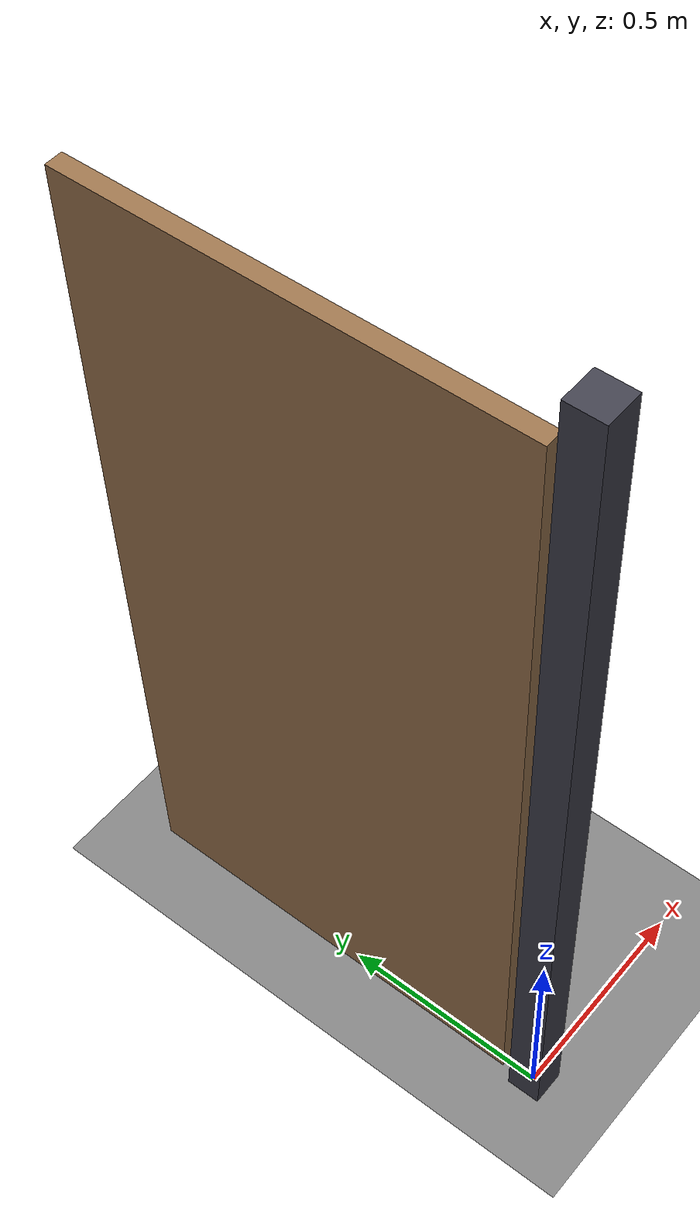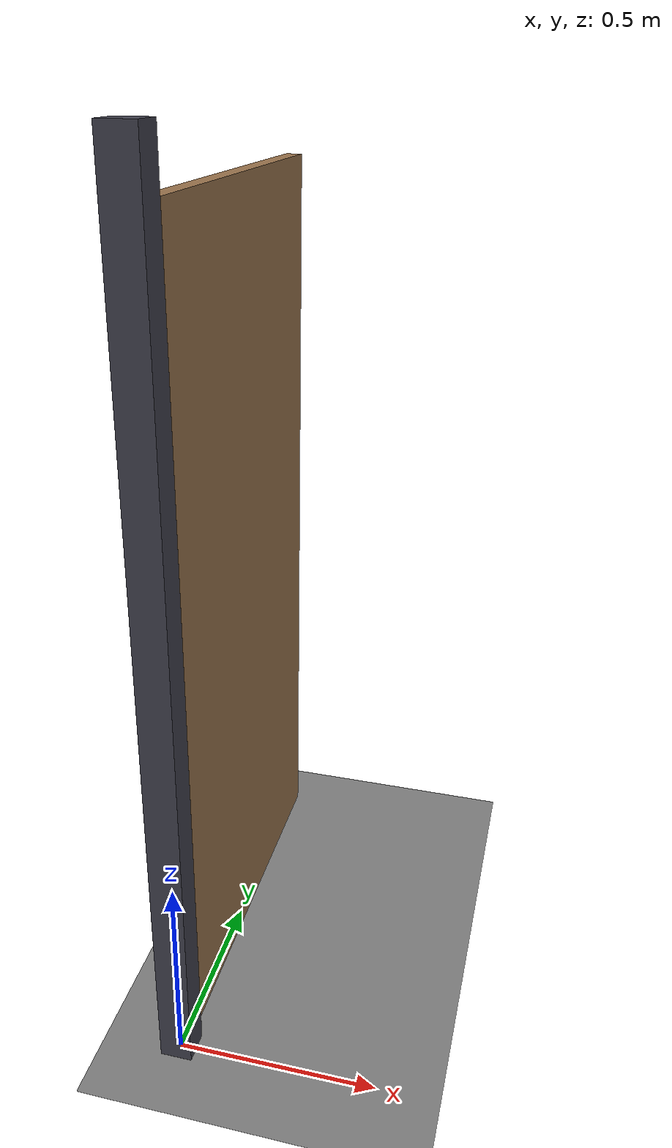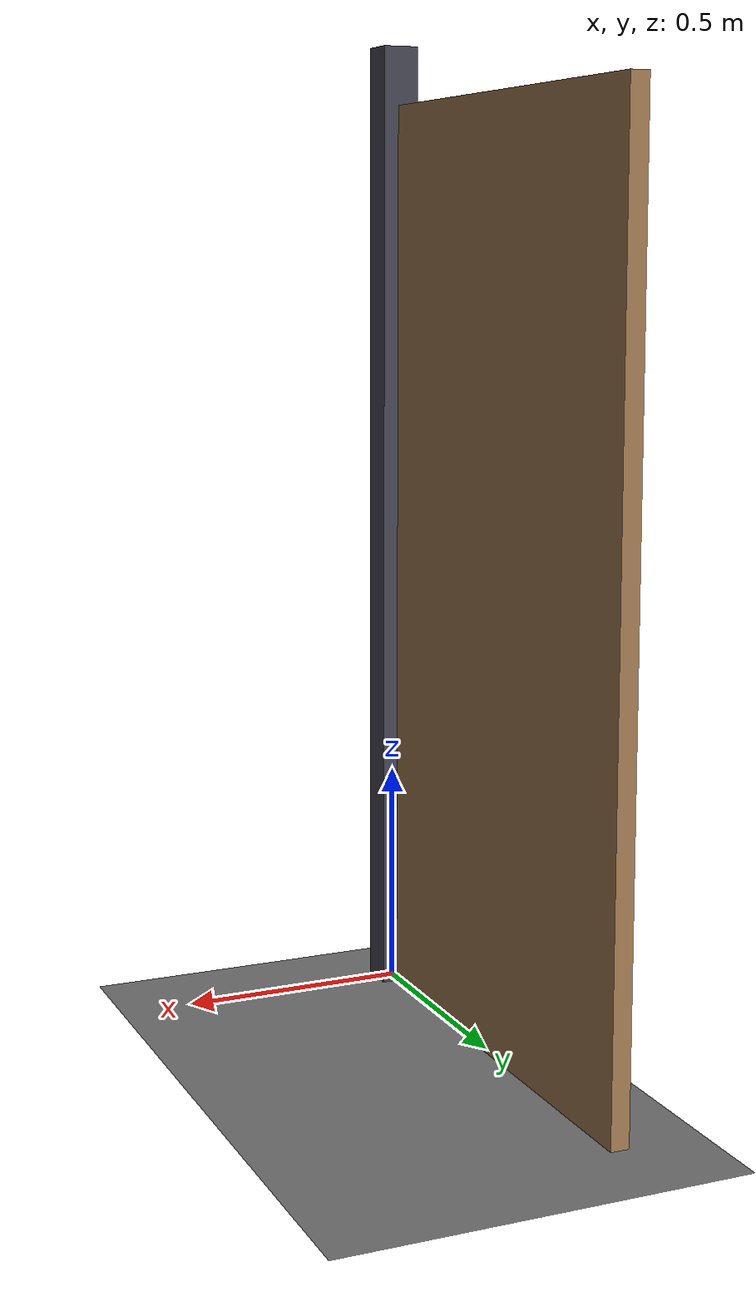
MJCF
<mujoco model="door_swings_shut">
  <compiler angle="radian"/>
  <option timestep="0.002"/>
  <worldbody>
    <geom name="floor" type="plane" size="8 8 0.1" friction="0.8 0.005 0.002"/>
    <body name="frame">
      <geom name="frame" type="box" pos="0 0 1.07" size="0.04 0.04 1.07" rgba="0.25 0.25 0.3 1"/>
    </body>
    <body name="door" pos="0 0.07 1.01">
      <joint name="hinge" type="hinge" pos="0 0 0" axis="0 0 1" limited="true" range="0 1.74533" stiffness="20" springref="0" damping="15"/>
      <geom name="door" type="box" pos="0 0.5 2.22045e-16" size="0.02 0.5 1" mass="20" rgba="0.6 0.45 0.3 1"/>
    </body>
  </worldbody>
  <keyframe>
    <key name="start" qpos="1.5708" qvel="0"/>
  </keyframe>
</mujoco>
